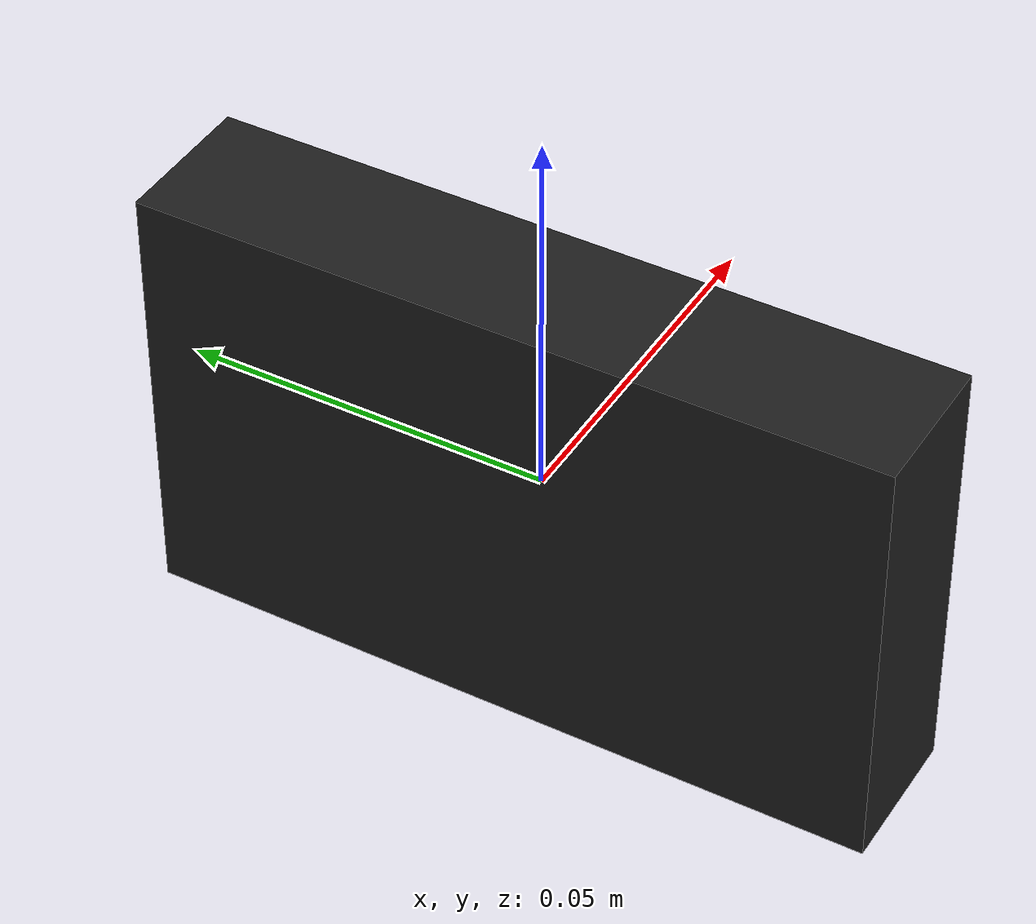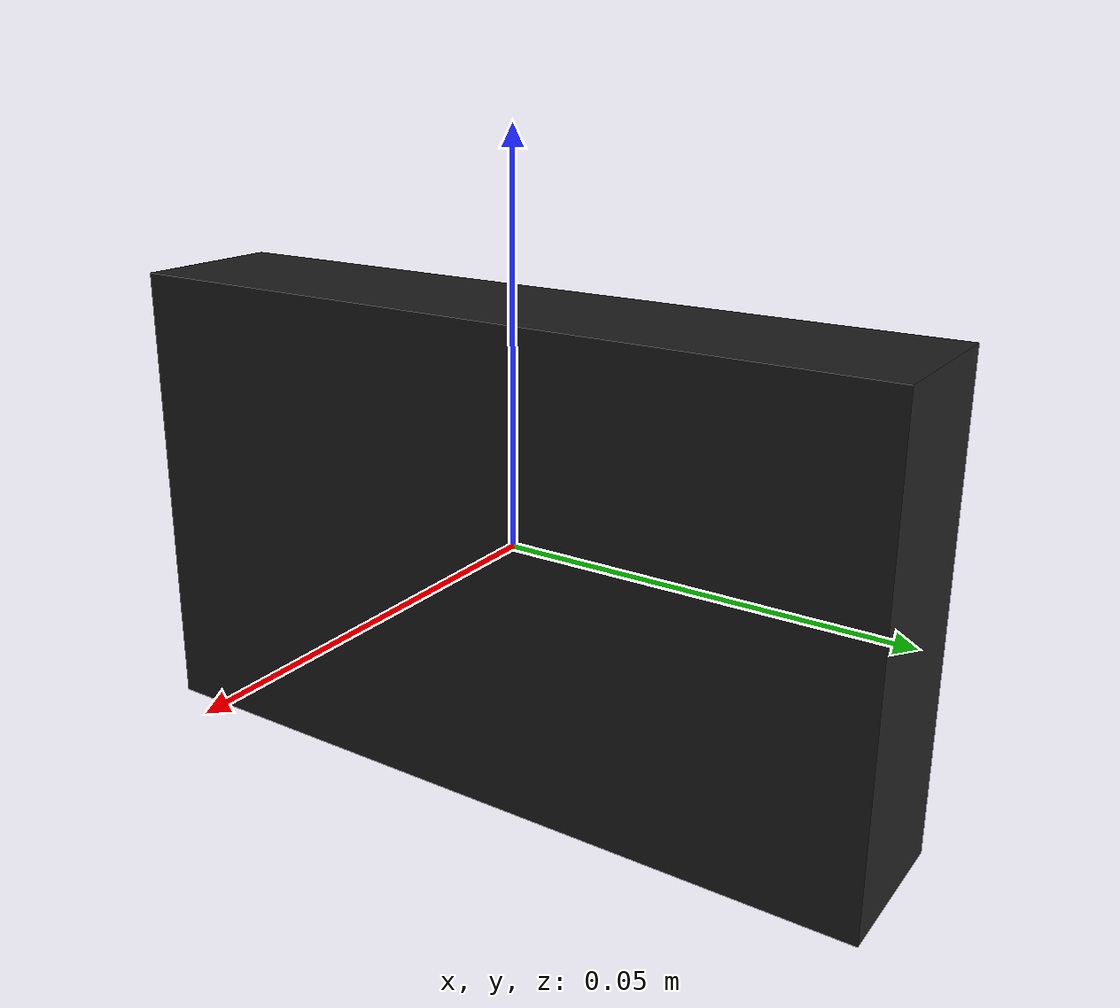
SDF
<?xml version="1.0" ?>
<sdf version="1.4">
  <model name="radar">
    <link name="link">
      <pose>0 0 0 0 0 0</pose>
      <inertial>
        <pose>0 0 0 0 0 0</pose>
        <mass>0.090</mass>
        <inertia>
          <ixx>0.000102</ixx>
          <ixy>0</ixy>
          <ixz>0</ixz>
          <iyy>3.00000014e-05</iyy>
          <iyz>0</iyz>
          <izz>7.80000025e-05</izz>
        </inertia>
      </inertial>
      <visual name="visual">
        <geometry>
          <box>
            <size>0.02 0.1 0.06</size>
          </box>
        </geometry>
        <material>
          <script>
            <name>Gazebo/Black</name>
          </script>
        </material>
      </visual>
      <sensor name="sonar" type="sonar">
        <pose>0 0 0 0 1.57 0</pose>
        <sonar>
          <min>0.02</min>
          <max>10.0</max>
          <radius>1.0</radius>
        </sonar>
        <plugin name="RadarPlugin" filename="libgazebo_radar_plugin.so">
          <robotNamespace></robotNamespace>
        </plugin>
        <always_on>1</always_on>
        <update_rate>20</update_rate>
        <visualize>true</visualize>
      </sensor>
    </link>
  </model>
</sdf>
